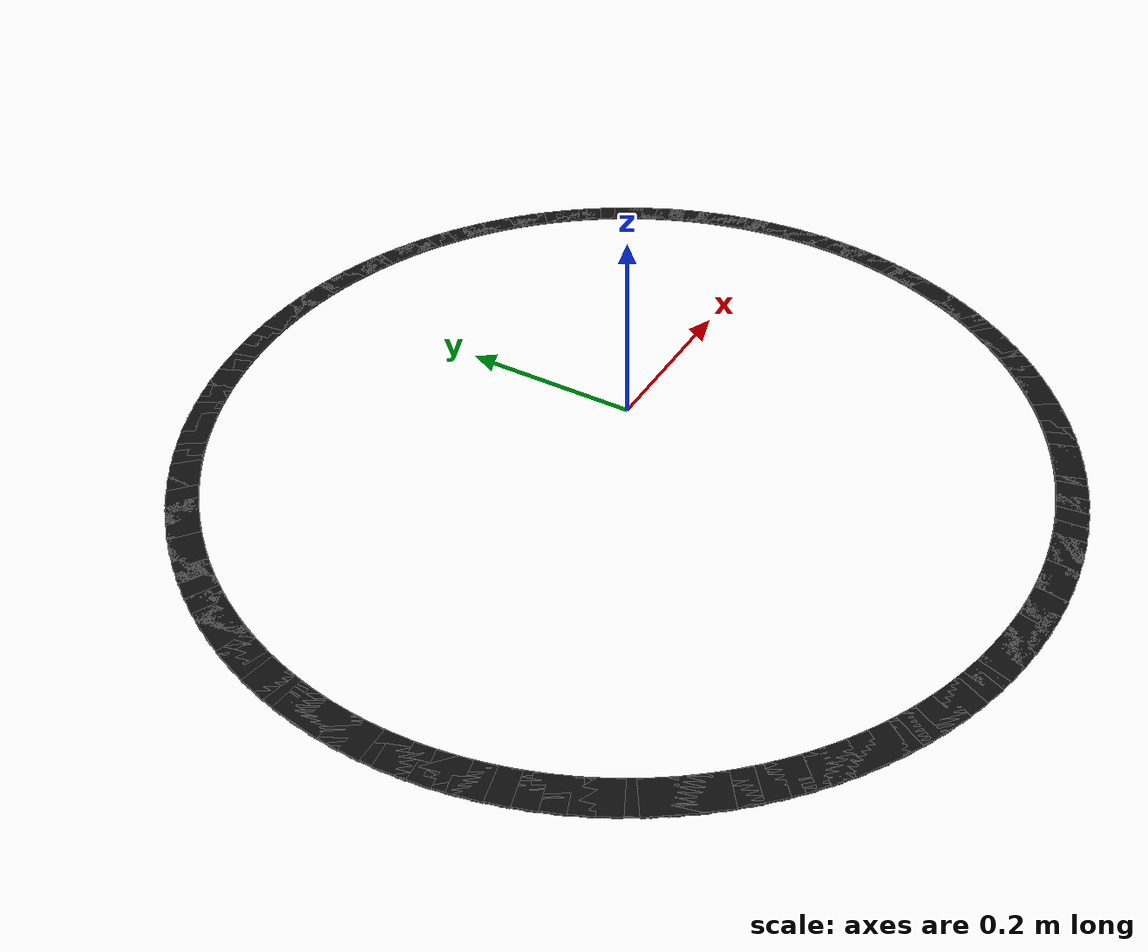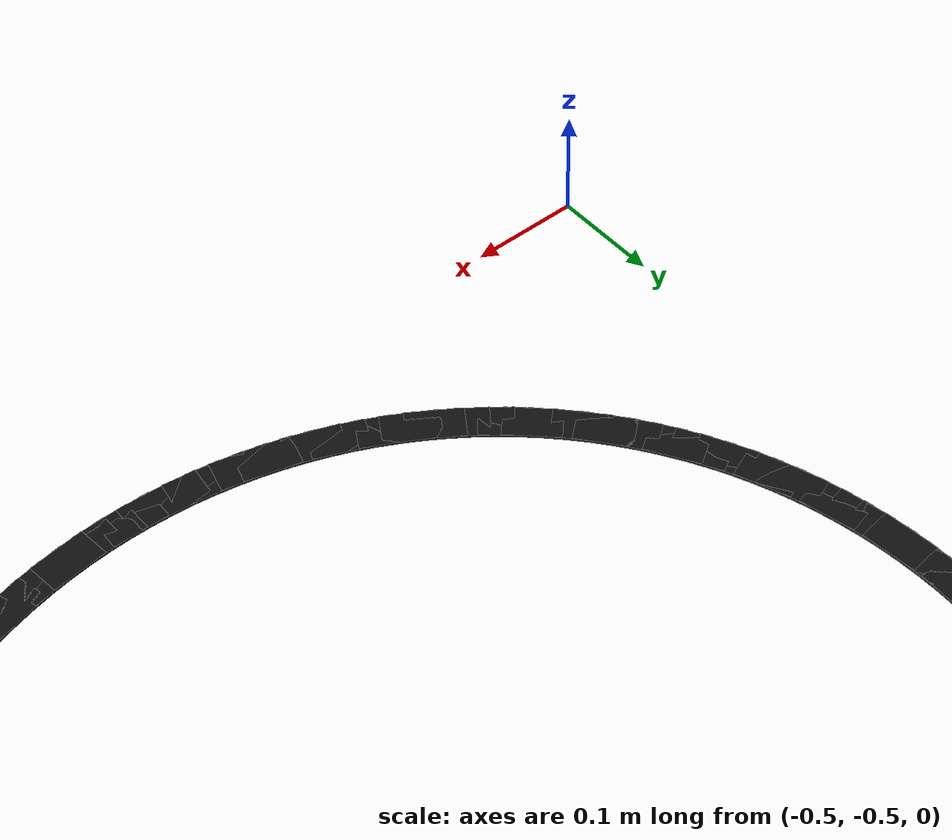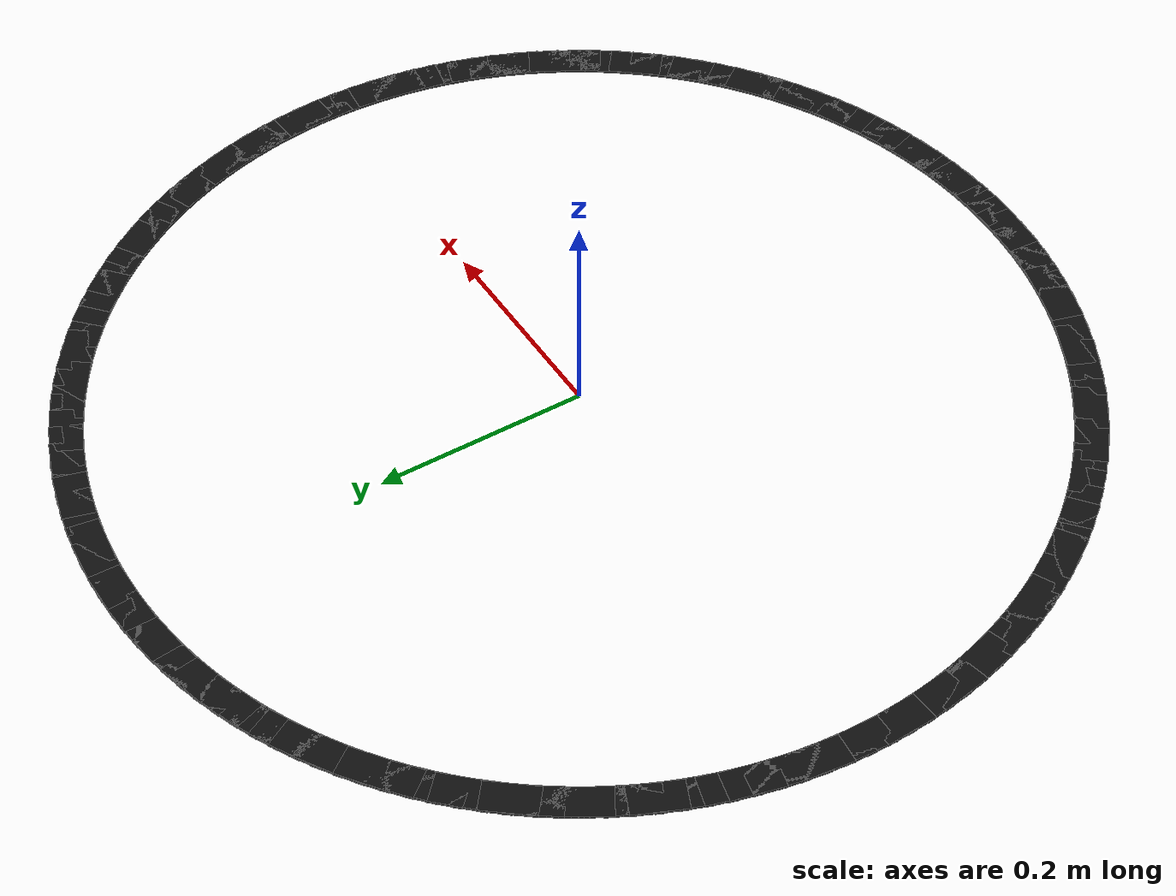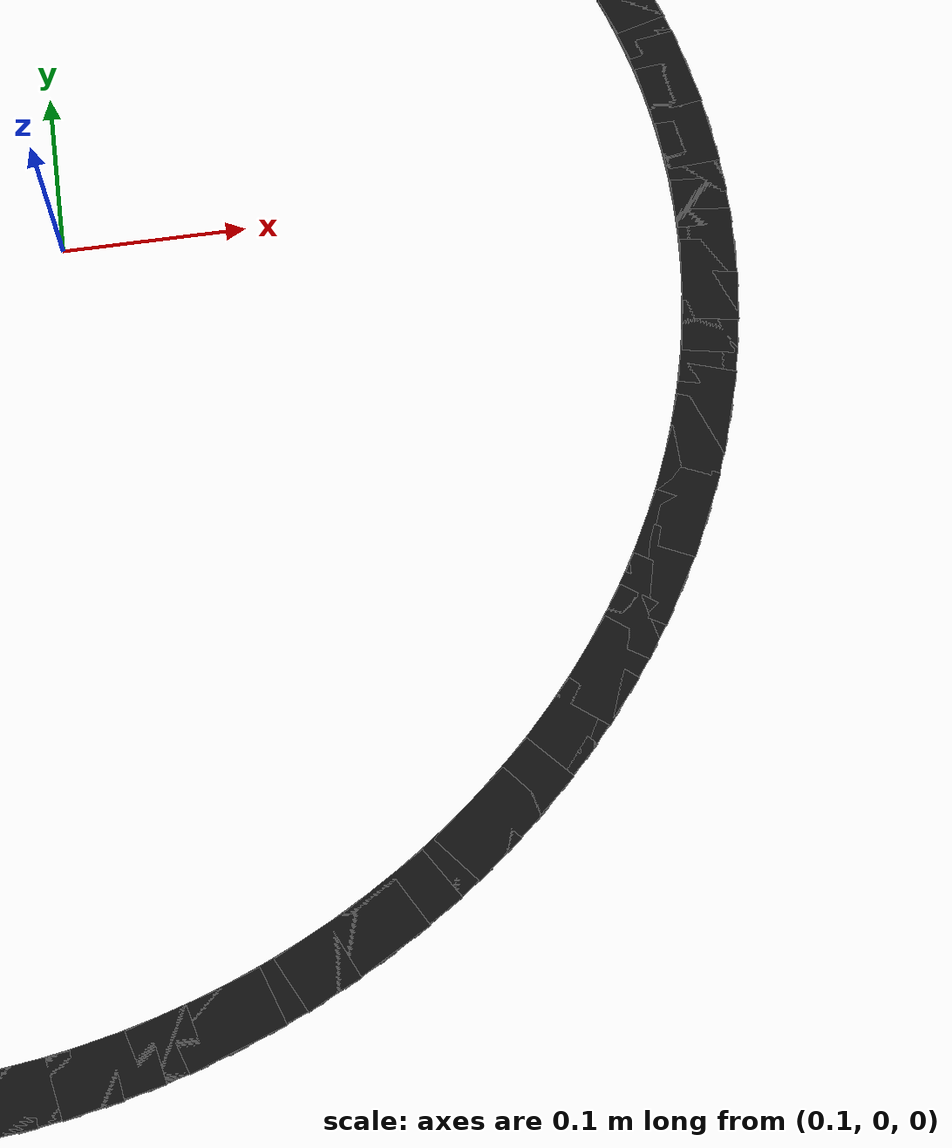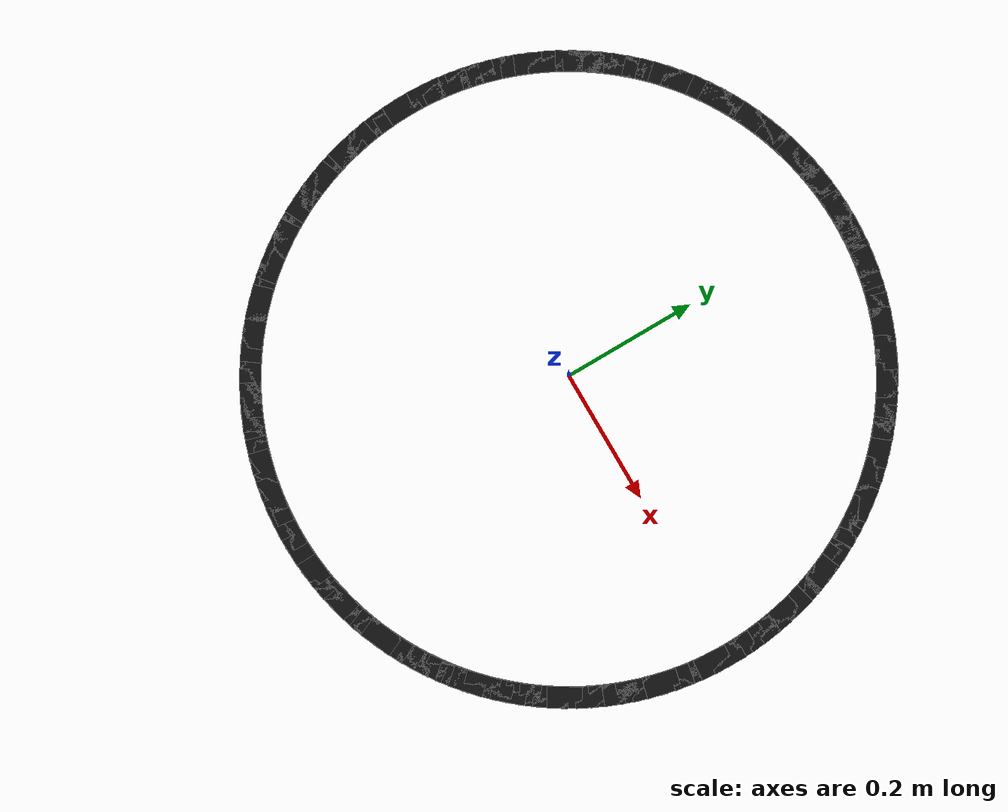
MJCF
<mujoco model="track_circle">
  <worldbody>
    <geom name="line_0" type="box" size="0.0248 0.015 0.001" pos="0.4498 0.0098 0.001" quat="0.699352 0 0 0.714778" contype="0" conaffinity="0" group="2" rgba="0.05 0.05 0.05 1"/>
    <geom name="line_1" type="box" size="0.0248 0.015 0.001" pos="0.4489 0.0294 0.001" quat="0.683592 0 0 0.729864" contype="0" conaffinity="0" group="2" rgba="0.05 0.05 0.05 1"/>
    <geom name="line_2" type="box" size="0.0248 0.015 0.001" pos="0.4472 0.0490 0.001" quat="0.667508 0 0 0.744603" contype="0" conaffinity="0" group="2" rgba="0.05 0.05 0.05 1"/>
    <geom name="line_3" type="box" size="0.0248 0.015 0.001" pos="0.4447 0.0684 0.001" quat="0.651105 0 0 0.758987" contype="0" conaffinity="0" group="2" rgba="0.05 0.05 0.05 1"/>
    <geom name="line_4" type="box" size="0.0248 0.015 0.001" pos="0.4412 0.0878 0.001" quat="0.634393 0 0 0.773010" contype="0" conaffinity="0" group="2" rgba="0.05 0.05 0.05 1"/>
    <geom name="line_5" type="box" size="0.0248 0.015 0.001" pos="0.4370 0.1069 0.001" quat="0.617379 0 0 0.786666" contype="0" conaffinity="0" group="2" rgba="0.05 0.05 0.05 1"/>
    <geom name="line_6" type="box" size="0.0248 0.015 0.001" pos="0.4319 0.1259 0.001" quat="0.600071 0 0 0.799947" contype="0" conaffinity="0" group="2" rgba="0.05 0.05 0.05 1"/>
    <geom name="line_7" type="box" size="0.0248 0.015 0.001" pos="0.4260 0.1446 0.001" quat="0.582478 0 0 0.812847" contype="0" conaffinity="0" group="2" rgba="0.05 0.05 0.05 1"/>
    <geom name="line_8" type="box" size="0.0248 0.015 0.001" pos="0.4193 0.1631 0.001" quat="0.564607 0 0 0.825360" contype="0" conaffinity="0" group="2" rgba="0.05 0.05 0.05 1"/>
    <geom name="line_9" type="box" size="0.0248 0.015 0.001" pos="0.4118 0.1812 0.001" quat="0.546467 0 0 0.837480" contype="0" conaffinity="0" group="2" rgba="0.05 0.05 0.05 1"/>
    <geom name="line_10" type="box" size="0.0248 0.015 0.001" pos="0.4035 0.1990 0.001" quat="0.528068 0 0 0.849202" contype="0" conaffinity="0" group="2" rgba="0.05 0.05 0.05 1"/>
    <geom name="line_11" type="box" size="0.0248 0.015 0.001" pos="0.3944 0.2164 0.001" quat="0.509417 0 0 0.860520" contype="0" conaffinity="0" group="2" rgba="0.05 0.05 0.05 1"/>
    <geom name="line_12" type="box" size="0.0248 0.015 0.001" pos="0.3846 0.2334 0.001" quat="0.490524 0 0 0.871428" contype="0" conaffinity="0" group="2" rgba="0.05 0.05 0.05 1"/>
    <geom name="line_13" type="box" size="0.0248 0.015 0.001" pos="0.3741 0.2499 0.001" quat="0.471397 0 0 0.881921" contype="0" conaffinity="0" group="2" rgba="0.05 0.05 0.05 1"/>
    <geom name="line_14" type="box" size="0.0248 0.015 0.001" pos="0.3628 0.2660 0.001" quat="0.452046 0 0 0.891995" contype="0" conaffinity="0" group="2" rgba="0.05 0.05 0.05 1"/>
    <geom name="line_15" type="box" size="0.0248 0.015 0.001" pos="0.3509 0.2816 0.001" quat="0.432479 0 0 0.901644" contype="0" conaffinity="0" group="2" rgba="0.05 0.05 0.05 1"/>
    <geom name="line_16" type="box" size="0.0248 0.015 0.001" pos="0.3382 0.2966 0.001" quat="0.412707 0 0 0.910864" contype="0" conaffinity="0" group="2" rgba="0.05 0.05 0.05 1"/>
    <geom name="line_17" type="box" size="0.0248 0.015 0.001" pos="0.3250 0.3111 0.001" quat="0.392738 0 0 0.919650" contype="0" conaffinity="0" group="2" rgba="0.05 0.05 0.05 1"/>
    <geom name="line_18" type="box" size="0.0248 0.015 0.001" pos="0.3111 0.3250 0.001" quat="0.372583 0 0 0.927999" contype="0" conaffinity="0" group="2" rgba="0.05 0.05 0.05 1"/>
    <geom name="line_19" type="box" size="0.0248 0.015 0.001" pos="0.2966 0.3382 0.001" quat="0.352250 0 0 0.935906" contype="0" conaffinity="0" group="2" rgba="0.05 0.05 0.05 1"/>
    <geom name="line_20" type="box" size="0.0248 0.015 0.001" pos="0.2816 0.3509 0.001" quat="0.331750 0 0 0.943368" contype="0" conaffinity="0" group="2" rgba="0.05 0.05 0.05 1"/>
    <geom name="line_21" type="box" size="0.0248 0.015 0.001" pos="0.2660 0.3628 0.001" quat="0.311091 0 0 0.950380" contype="0" conaffinity="0" group="2" rgba="0.05 0.05 0.05 1"/>
    <geom name="line_22" type="box" size="0.0248 0.015 0.001" pos="0.2499 0.3741 0.001" quat="0.290285 0 0 0.956940" contype="0" conaffinity="0" group="2" rgba="0.05 0.05 0.05 1"/>
    <geom name="line_23" type="box" size="0.0248 0.015 0.001" pos="0.2334 0.3846 0.001" quat="0.269340 0 0 0.963045" contype="0" conaffinity="0" group="2" rgba="0.05 0.05 0.05 1"/>
    <geom name="line_24" type="box" size="0.0248 0.015 0.001" pos="0.2164 0.3944 0.001" quat="0.248267 0 0 0.968692" contype="0" conaffinity="0" group="2" rgba="0.05 0.05 0.05 1"/>
    <geom name="line_25" type="box" size="0.0248 0.015 0.001" pos="0.1990 0.4035 0.001" quat="0.227076 0 0 0.973877" contype="0" conaffinity="0" group="2" rgba="0.05 0.05 0.05 1"/>
    <geom name="line_26" type="box" size="0.0248 0.015 0.001" pos="0.1812 0.4118 0.001" quat="0.205777 0 0 0.978599" contype="0" conaffinity="0" group="2" rgba="0.05 0.05 0.05 1"/>
    <geom name="line_27" type="box" size="0.0248 0.015 0.001" pos="0.1631 0.4193 0.001" quat="0.184380 0 0 0.982855" contype="0" conaffinity="0" group="2" rgba="0.05 0.05 0.05 1"/>
    <geom name="line_28" type="box" size="0.0248 0.015 0.001" pos="0.1446 0.4260 0.001" quat="0.162895 0 0 0.986643" contype="0" conaffinity="0" group="2" rgba="0.05 0.05 0.05 1"/>
    <geom name="line_29" type="box" size="0.0248 0.015 0.001" pos="0.1259 0.4319 0.001" quat="0.141333 0 0 0.989962" contype="0" conaffinity="0" group="2" rgba="0.05 0.05 0.05 1"/>
    <geom name="line_30" type="box" size="0.0248 0.015 0.001" pos="0.1069 0.4370 0.001" quat="0.119704 0 0 0.992810" contype="0" conaffinity="0" group="2" rgba="0.05 0.05 0.05 1"/>
    <geom name="line_31" type="box" size="0.0248 0.015 0.001" pos="0.0878 0.4412 0.001" quat="0.098017 0 0 0.995185" contype="0" conaffinity="0" group="2" rgba="0.05 0.05 0.05 1"/>
    <geom name="line_32" type="box" size="0.0248 0.015 0.001" pos="0.0684 0.4447 0.001" quat="0.076284 0 0 0.997086" contype="0" conaffinity="0" group="2" rgba="0.05 0.05 0.05 1"/>
    <geom name="line_33" type="box" size="0.0248 0.015 0.001" pos="0.0490 0.4472 0.001" quat="0.054515 0 0 0.998513" contype="0" conaffinity="0" group="2" rgba="0.05 0.05 0.05 1"/>
    <geom name="line_34" type="box" size="0.0248 0.015 0.001" pos="0.0294 0.4489 0.001" quat="0.032719 0 0 0.999465" contype="0" conaffinity="0" group="2" rgba="0.05 0.05 0.05 1"/>
    <geom name="line_35" type="box" size="0.0248 0.015 0.001" pos="0.0098 0.4498 0.001" quat="0.010908 0 0 0.999941" contype="0" conaffinity="0" group="2" rgba="0.05 0.05 0.05 1"/>
    <geom name="line_36" type="box" size="0.0248 0.015 0.001" pos="-0.0098 0.4498 0.001" quat="0.010908 0 0 -0.999941" contype="0" conaffinity="0" group="2" rgba="0.05 0.05 0.05 1"/>
    <geom name="line_37" type="box" size="0.0248 0.015 0.001" pos="-0.0294 0.4489 0.001" quat="0.032719 0 0 -0.999465" contype="0" conaffinity="0" group="2" rgba="0.05 0.05 0.05 1"/>
    <geom name="line_38" type="box" size="0.0248 0.015 0.001" pos="-0.0490 0.4472 0.001" quat="0.054515 0 0 -0.998513" contype="0" conaffinity="0" group="2" rgba="0.05 0.05 0.05 1"/>
    <geom name="line_39" type="box" size="0.0248 0.015 0.001" pos="-0.0684 0.4447 0.001" quat="0.076284 0 0 -0.997086" contype="0" conaffinity="0" group="2" rgba="0.05 0.05 0.05 1"/>
    <geom name="line_40" type="box" size="0.0248 0.015 0.001" pos="-0.0878 0.4412 0.001" quat="0.098017 0 0 -0.995185" contype="0" conaffinity="0" group="2" rgba="0.05 0.05 0.05 1"/>
    <geom name="line_41" type="box" size="0.0248 0.015 0.001" pos="-0.1069 0.4370 0.001" quat="0.119704 0 0 -0.992810" contype="0" conaffinity="0" group="2" rgba="0.05 0.05 0.05 1"/>
    <geom name="line_42" type="box" size="0.0248 0.015 0.001" pos="-0.1259 0.4319 0.001" quat="0.141333 0 0 -0.989962" contype="0" conaffinity="0" group="2" rgba="0.05 0.05 0.05 1"/>
    <geom name="line_43" type="box" size="0.0248 0.015 0.001" pos="-0.1446 0.4260 0.001" quat="0.162895 0 0 -0.986643" contype="0" conaffinity="0" group="2" rgba="0.05 0.05 0.05 1"/>
    <geom name="line_44" type="box" size="0.0248 0.015 0.001" pos="-0.1631 0.4193 0.001" quat="0.184380 0 0 -0.982855" contype="0" conaffinity="0" group="2" rgba="0.05 0.05 0.05 1"/>
    <geom name="line_45" type="box" size="0.0248 0.015 0.001" pos="-0.1812 0.4118 0.001" quat="0.205777 0 0 -0.978599" contype="0" conaffinity="0" group="2" rgba="0.05 0.05 0.05 1"/>
    <geom name="line_46" type="box" size="0.0248 0.015 0.001" pos="-0.1990 0.4035 0.001" quat="0.227076 0 0 -0.973877" contype="0" conaffinity="0" group="2" rgba="0.05 0.05 0.05 1"/>
    <geom name="line_47" type="box" size="0.0248 0.015 0.001" pos="-0.2164 0.3944 0.001" quat="0.248267 0 0 -0.968692" contype="0" conaffinity="0" group="2" rgba="0.05 0.05 0.05 1"/>
    <geom name="line_48" type="box" size="0.0248 0.015 0.001" pos="-0.2334 0.3846 0.001" quat="0.269340 0 0 -0.963045" contype="0" conaffinity="0" group="2" rgba="0.05 0.05 0.05 1"/>
    <geom name="line_49" type="box" size="0.0248 0.015 0.001" pos="-0.2499 0.3741 0.001" quat="0.290285 0 0 -0.956940" contype="0" conaffinity="0" group="2" rgba="0.05 0.05 0.05 1"/>
    <geom name="line_50" type="box" size="0.0248 0.015 0.001" pos="-0.2660 0.3628 0.001" quat="0.311091 0 0 -0.950380" contype="0" conaffinity="0" group="2" rgba="0.05 0.05 0.05 1"/>
    <geom name="line_51" type="box" size="0.0248 0.015 0.001" pos="-0.2816 0.3509 0.001" quat="0.331750 0 0 -0.943368" contype="0" conaffinity="0" group="2" rgba="0.05 0.05 0.05 1"/>
    <geom name="line_52" type="box" size="0.0248 0.015 0.001" pos="-0.2966 0.3382 0.001" quat="0.352250 0 0 -0.935906" contype="0" conaffinity="0" group="2" rgba="0.05 0.05 0.05 1"/>
    <geom name="line_53" type="box" size="0.0248 0.015 0.001" pos="-0.3111 0.3250 0.001" quat="0.372583 0 0 -0.927999" contype="0" conaffinity="0" group="2" rgba="0.05 0.05 0.05 1"/>
    <geom name="line_54" type="box" size="0.0248 0.015 0.001" pos="-0.3250 0.3111 0.001" quat="0.392738 0 0 -0.919650" contype="0" conaffinity="0" group="2" rgba="0.05 0.05 0.05 1"/>
    <geom name="line_55" type="box" size="0.0248 0.015 0.001" pos="-0.3382 0.2966 0.001" quat="0.412707 0 0 -0.910864" contype="0" conaffinity="0" group="2" rgba="0.05 0.05 0.05 1"/>
    <geom name="line_56" type="box" size="0.0248 0.015 0.001" pos="-0.3509 0.2816 0.001" quat="0.432479 0 0 -0.901644" contype="0" conaffinity="0" group="2" rgba="0.05 0.05 0.05 1"/>
    <geom name="line_57" type="box" size="0.0248 0.015 0.001" pos="-0.3628 0.2660 0.001" quat="0.452046 0 0 -0.891995" contype="0" conaffinity="0" group="2" rgba="0.05 0.05 0.05 1"/>
    <geom name="line_58" type="box" size="0.0248 0.015 0.001" pos="-0.3741 0.2499 0.001" quat="0.471397 0 0 -0.881921" contype="0" conaffinity="0" group="2" rgba="0.05 0.05 0.05 1"/>
    <geom name="line_59" type="box" size="0.0248 0.015 0.001" pos="-0.3846 0.2334 0.001" quat="0.490524 0 0 -0.871428" contype="0" conaffinity="0" group="2" rgba="0.05 0.05 0.05 1"/>
    <geom name="line_60" type="box" size="0.0248 0.015 0.001" pos="-0.3944 0.2164 0.001" quat="0.509417 0 0 -0.860520" contype="0" conaffinity="0" group="2" rgba="0.05 0.05 0.05 1"/>
    <geom name="line_61" type="box" size="0.0248 0.015 0.001" pos="-0.4035 0.1990 0.001" quat="0.528068 0 0 -0.849202" contype="0" conaffinity="0" group="2" rgba="0.05 0.05 0.05 1"/>
    <geom name="line_62" type="box" size="0.0248 0.015 0.001" pos="-0.4118 0.1812 0.001" quat="0.546467 0 0 -0.837480" contype="0" conaffinity="0" group="2" rgba="0.05 0.05 0.05 1"/>
    <geom name="line_63" type="box" size="0.0248 0.015 0.001" pos="-0.4193 0.1631 0.001" quat="0.564607 0 0 -0.825360" contype="0" conaffinity="0" group="2" rgba="0.05 0.05 0.05 1"/>
    <geom name="line_64" type="box" size="0.0248 0.015 0.001" pos="-0.4260 0.1446 0.001" quat="0.582478 0 0 -0.812847" contype="0" conaffinity="0" group="2" rgba="0.05 0.05 0.05 1"/>
    <geom name="line_65" type="box" size="0.0248 0.015 0.001" pos="-0.4319 0.1259 0.001" quat="0.600071 0 0 -0.799947" contype="0" conaffinity="0" group="2" rgba="0.05 0.05 0.05 1"/>
    <geom name="line_66" type="box" size="0.0248 0.015 0.001" pos="-0.4370 0.1069 0.001" quat="0.617379 0 0 -0.786666" contype="0" conaffinity="0" group="2" rgba="0.05 0.05 0.05 1"/>
    <geom name="line_67" type="box" size="0.0248 0.015 0.001" pos="-0.4412 0.0878 0.001" quat="0.634393 0 0 -0.773010" contype="0" conaffinity="0" group="2" rgba="0.05 0.05 0.05 1"/>
    <geom name="line_68" type="box" size="0.0248 0.015 0.001" pos="-0.4447 0.0684 0.001" quat="0.651105 0 0 -0.758987" contype="0" conaffinity="0" group="2" rgba="0.05 0.05 0.05 1"/>
    <geom name="line_69" type="box" size="0.0248 0.015 0.001" pos="-0.4472 0.0490 0.001" quat="0.667508 0 0 -0.744603" contype="0" conaffinity="0" group="2" rgba="0.05 0.05 0.05 1"/>
    <geom name="line_70" type="box" size="0.0248 0.015 0.001" pos="-0.4489 0.0294 0.001" quat="0.683592 0 0 -0.729864" contype="0" conaffinity="0" group="2" rgba="0.05 0.05 0.05 1"/>
    <geom name="line_71" type="box" size="0.0248 0.015 0.001" pos="-0.4498 0.0098 0.001" quat="0.699352 0 0 -0.714778" contype="0" conaffinity="0" group="2" rgba="0.05 0.05 0.05 1"/>
    <geom name="line_72" type="box" size="0.0248 0.015 0.001" pos="-0.4498 -0.0098 0.001" quat="0.714778 0 0 -0.699352" contype="0" conaffinity="0" group="2" rgba="0.05 0.05 0.05 1"/>
    <geom name="line_73" type="box" size="0.0248 0.015 0.001" pos="-0.4489 -0.0294 0.001" quat="0.729864 0 0 -0.683592" contype="0" conaffinity="0" group="2" rgba="0.05 0.05 0.05 1"/>
    <geom name="line_74" type="box" size="0.0248 0.015 0.001" pos="-0.4472 -0.0490 0.001" quat="0.744603 0 0 -0.667508" contype="0" conaffinity="0" group="2" rgba="0.05 0.05 0.05 1"/>
    <geom name="line_75" type="box" size="0.0248 0.015 0.001" pos="-0.4447 -0.0684 0.001" quat="0.758987 0 0 -0.651105" contype="0" conaffinity="0" group="2" rgba="0.05 0.05 0.05 1"/>
    <geom name="line_76" type="box" size="0.0248 0.015 0.001" pos="-0.4412 -0.0878 0.001" quat="0.773010 0 0 -0.634393" contype="0" conaffinity="0" group="2" rgba="0.05 0.05 0.05 1"/>
    <geom name="line_77" type="box" size="0.0248 0.015 0.001" pos="-0.4370 -0.1069 0.001" quat="0.786666 0 0 -0.617379" contype="0" conaffinity="0" group="2" rgba="0.05 0.05 0.05 1"/>
    <geom name="line_78" type="box" size="0.0248 0.015 0.001" pos="-0.4319 -0.1259 0.001" quat="0.799947 0 0 -0.600071" contype="0" conaffinity="0" group="2" rgba="0.05 0.05 0.05 1"/>
    <geom name="line_79" type="box" size="0.0248 0.015 0.001" pos="-0.4260 -0.1446 0.001" quat="0.812847 0 0 -0.582478" contype="0" conaffinity="0" group="2" rgba="0.05 0.05 0.05 1"/>
    <geom name="line_80" type="box" size="0.0248 0.015 0.001" pos="-0.4193 -0.1631 0.001" quat="0.825360 0 0 -0.564607" contype="0" conaffinity="0" group="2" rgba="0.05 0.05 0.05 1"/>
    <geom name="line_81" type="box" size="0.0248 0.015 0.001" pos="-0.4118 -0.1812 0.001" quat="0.837480 0 0 -0.546467" contype="0" conaffinity="0" group="2" rgba="0.05 0.05 0.05 1"/>
    <geom name="line_82" type="box" size="0.0248 0.015 0.001" pos="-0.4035 -0.1990 0.001" quat="0.849202 0 0 -0.528068" contype="0" conaffinity="0" group="2" rgba="0.05 0.05 0.05 1"/>
    <geom name="line_83" type="box" size="0.0248 0.015 0.001" pos="-0.3944 -0.2164 0.001" quat="0.860520 0 0 -0.509417" contype="0" conaffinity="0" group="2" rgba="0.05 0.05 0.05 1"/>
    <geom name="line_84" type="box" size="0.0248 0.015 0.001" pos="-0.3846 -0.2334 0.001" quat="0.871428 0 0 -0.490524" contype="0" conaffinity="0" group="2" rgba="0.05 0.05 0.05 1"/>
    <geom name="line_85" type="box" size="0.0248 0.015 0.001" pos="-0.3741 -0.2499 0.001" quat="0.881921 0 0 -0.471397" contype="0" conaffinity="0" group="2" rgba="0.05 0.05 0.05 1"/>
    <geom name="line_86" type="box" size="0.0248 0.015 0.001" pos="-0.3628 -0.2660 0.001" quat="0.891995 0 0 -0.452046" contype="0" conaffinity="0" group="2" rgba="0.05 0.05 0.05 1"/>
    <geom name="line_87" type="box" size="0.0248 0.015 0.001" pos="-0.3509 -0.2816 0.001" quat="0.901644 0 0 -0.432479" contype="0" conaffinity="0" group="2" rgba="0.05 0.05 0.05 1"/>
    <geom name="line_88" type="box" size="0.0248 0.015 0.001" pos="-0.3382 -0.2966 0.001" quat="0.910864 0 0 -0.412707" contype="0" conaffinity="0" group="2" rgba="0.05 0.05 0.05 1"/>
    <geom name="line_89" type="box" size="0.0248 0.015 0.001" pos="-0.3250 -0.3111 0.001" quat="0.919650 0 0 -0.392738" contype="0" conaffinity="0" group="2" rgba="0.05 0.05 0.05 1"/>
    <geom name="line_90" type="box" size="0.0248 0.015 0.001" pos="-0.3111 -0.3250 0.001" quat="0.927999 0 0 -0.372583" contype="0" conaffinity="0" group="2" rgba="0.05 0.05 0.05 1"/>
    <geom name="line_91" type="box" size="0.0248 0.015 0.001" pos="-0.2966 -0.3382 0.001" quat="0.935906 0 0 -0.352250" contype="0" conaffinity="0" group="2" rgba="0.05 0.05 0.05 1"/>
    <geom name="line_92" type="box" size="0.0248 0.015 0.001" pos="-0.2816 -0.3509 0.001" quat="0.943368 0 0 -0.331750" contype="0" conaffinity="0" group="2" rgba="0.05 0.05 0.05 1"/>
    <geom name="line_93" type="box" size="0.0248 0.015 0.001" pos="-0.2660 -0.3628 0.001" quat="0.950380 0 0 -0.311091" contype="0" conaffinity="0" group="2" rgba="0.05 0.05 0.05 1"/>
    <geom name="line_94" type="box" size="0.0248 0.015 0.001" pos="-0.2499 -0.3741 0.001" quat="0.956940 0 0 -0.290285" contype="0" conaffinity="0" group="2" rgba="0.05 0.05 0.05 1"/>
    <geom name="line_95" type="box" size="0.0248 0.015 0.001" pos="-0.2334 -0.3846 0.001" quat="0.963045 0 0 -0.269340" contype="0" conaffinity="0" group="2" rgba="0.05 0.05 0.05 1"/>
    <geom name="line_96" type="box" size="0.0248 0.015 0.001" pos="-0.2164 -0.3944 0.001" quat="0.968692 0 0 -0.248267" contype="0" conaffinity="0" group="2" rgba="0.05 0.05 0.05 1"/>
    <geom name="line_97" type="box" size="0.0248 0.015 0.001" pos="-0.1990 -0.4035 0.001" quat="0.973877 0 0 -0.227076" contype="0" conaffinity="0" group="2" rgba="0.05 0.05 0.05 1"/>
    <geom name="line_98" type="box" size="0.0248 0.015 0.001" pos="-0.1812 -0.4118 0.001" quat="0.978599 0 0 -0.205777" contype="0" conaffinity="0" group="2" rgba="0.05 0.05 0.05 1"/>
    <geom name="line_99" type="box" size="0.0248 0.015 0.001" pos="-0.1631 -0.4193 0.001" quat="0.982855 0 0 -0.184380" contype="0" conaffinity="0" group="2" rgba="0.05 0.05 0.05 1"/>
    <geom name="line_100" type="box" size="0.0248 0.015 0.001" pos="-0.1446 -0.4260 0.001" quat="0.986643 0 0 -0.162895" contype="0" conaffinity="0" group="2" rgba="0.05 0.05 0.05 1"/>
    <geom name="line_101" type="box" size="0.0248 0.015 0.001" pos="-0.1259 -0.4319 0.001" quat="0.989962 0 0 -0.141333" contype="0" conaffinity="0" group="2" rgba="0.05 0.05 0.05 1"/>
    <geom name="line_102" type="box" size="0.0248 0.015 0.001" pos="-0.1069 -0.4370 0.001" quat="0.992810 0 0 -0.119704" contype="0" conaffinity="0" group="2" rgba="0.05 0.05 0.05 1"/>
    <geom name="line_103" type="box" size="0.0248 0.015 0.001" pos="-0.0878 -0.4412 0.001" quat="0.995185 0 0 -0.098017" contype="0" conaffinity="0" group="2" rgba="0.05 0.05 0.05 1"/>
    <geom name="line_104" type="box" size="0.0248 0.015 0.001" pos="-0.0684 -0.4447 0.001" quat="0.997086 0 0 -0.076284" contype="0" conaffinity="0" group="2" rgba="0.05 0.05 0.05 1"/>
    <geom name="line_105" type="box" size="0.0248 0.015 0.001" pos="-0.0490 -0.4472 0.001" quat="0.998513 0 0 -0.054515" contype="0" conaffinity="0" group="2" rgba="0.05 0.05 0.05 1"/>
    <geom name="line_106" type="box" size="0.0248 0.015 0.001" pos="-0.0294 -0.4489 0.001" quat="0.999465 0 0 -0.032719" contype="0" conaffinity="0" group="2" rgba="0.05 0.05 0.05 1"/>
    <geom name="line_107" type="box" size="0.0248 0.015 0.001" pos="-0.0098 -0.4498 0.001" quat="0.999941 0 0 -0.010908" contype="0" conaffinity="0" group="2" rgba="0.05 0.05 0.05 1"/>
    <geom name="line_108" type="box" size="0.0248 0.015 0.001" pos="0.0098 -0.4498 0.001" quat="0.999941 0 0 0.010908" contype="0" conaffinity="0" group="2" rgba="0.05 0.05 0.05 1"/>
    <geom name="line_109" type="box" size="0.0248 0.015 0.001" pos="0.0294 -0.4489 0.001" quat="0.999465 0 0 0.032719" contype="0" conaffinity="0" group="2" rgba="0.05 0.05 0.05 1"/>
    <geom name="line_110" type="box" size="0.0248 0.015 0.001" pos="0.0490 -0.4472 0.001" quat="0.998513 0 0 0.054515" contype="0" conaffinity="0" group="2" rgba="0.05 0.05 0.05 1"/>
    <geom name="line_111" type="box" size="0.0248 0.015 0.001" pos="0.0684 -0.4447 0.001" quat="0.997086 0 0 0.076284" contype="0" conaffinity="0" group="2" rgba="0.05 0.05 0.05 1"/>
    <geom name="line_112" type="box" size="0.0248 0.015 0.001" pos="0.0878 -0.4412 0.001" quat="0.995185 0 0 0.098017" contype="0" conaffinity="0" group="2" rgba="0.05 0.05 0.05 1"/>
    <geom name="line_113" type="box" size="0.0248 0.015 0.001" pos="0.1069 -0.4370 0.001" quat="0.992810 0 0 0.119704" contype="0" conaffinity="0" group="2" rgba="0.05 0.05 0.05 1"/>
    <geom name="line_114" type="box" size="0.0248 0.015 0.001" pos="0.1259 -0.4319 0.001" quat="0.989962 0 0 0.141333" contype="0" conaffinity="0" group="2" rgba="0.05 0.05 0.05 1"/>
    <geom name="line_115" type="box" size="0.0248 0.015 0.001" pos="0.1446 -0.4260 0.001" quat="0.986643 0 0 0.162895" contype="0" conaffinity="0" group="2" rgba="0.05 0.05 0.05 1"/>
    <geom name="line_116" type="box" size="0.0248 0.015 0.001" pos="0.1631 -0.4193 0.001" quat="0.982855 0 0 0.184380" contype="0" conaffinity="0" group="2" rgba="0.05 0.05 0.05 1"/>
    <geom name="line_117" type="box" size="0.0248 0.015 0.001" pos="0.1812 -0.4118 0.001" quat="0.978599 0 0 0.205777" contype="0" conaffinity="0" group="2" rgba="0.05 0.05 0.05 1"/>
    <geom name="line_118" type="box" size="0.0248 0.015 0.001" pos="0.1990 -0.4035 0.001" quat="0.973877 0 0 0.227076" contype="0" conaffinity="0" group="2" rgba="0.05 0.05 0.05 1"/>
    <geom name="line_119" type="box" size="0.0248 0.015 0.001" pos="0.2164 -0.3944 0.001" quat="0.968692 0 0 0.248267" contype="0" conaffinity="0" group="2" rgba="0.05 0.05 0.05 1"/>
    <geom name="line_120" type="box" size="0.0248 0.015 0.001" pos="0.2334 -0.3846 0.001" quat="0.963045 0 0 0.269340" contype="0" conaffinity="0" group="2" rgba="0.05 0.05 0.05 1"/>
    <geom name="line_121" type="box" size="0.0248 0.015 0.001" pos="0.2499 -0.3741 0.001" quat="0.956940 0 0 0.290285" contype="0" conaffinity="0" group="2" rgba="0.05 0.05 0.05 1"/>
    <geom name="line_122" type="box" size="0.0248 0.015 0.001" pos="0.2660 -0.3628 0.001" quat="0.950380 0 0 0.311091" contype="0" conaffinity="0" group="2" rgba="0.05 0.05 0.05 1"/>
    <geom name="line_123" type="box" size="0.0248 0.015 0.001" pos="0.2816 -0.3509 0.001" quat="0.943368 0 0 0.331750" contype="0" conaffinity="0" group="2" rgba="0.05 0.05 0.05 1"/>
    <geom name="line_124" type="box" size="0.0248 0.015 0.001" pos="0.2966 -0.3382 0.001" quat="0.935906 0 0 0.352250" contype="0" conaffinity="0" group="2" rgba="0.05 0.05 0.05 1"/>
    <geom name="line_125" type="box" size="0.0248 0.015 0.001" pos="0.3111 -0.3250 0.001" quat="0.927999 0 0 0.372583" contype="0" conaffinity="0" group="2" rgba="0.05 0.05 0.05 1"/>
    <geom name="line_126" type="box" size="0.0248 0.015 0.001" pos="0.3250 -0.3111 0.001" quat="0.919650 0 0 0.392738" contype="0" conaffinity="0" group="2" rgba="0.05 0.05 0.05 1"/>
    <geom name="line_127" type="box" size="0.0248 0.015 0.001" pos="0.3382 -0.2966 0.001" quat="0.910864 0 0 0.412707" contype="0" conaffinity="0" group="2" rgba="0.05 0.05 0.05 1"/>
    <geom name="line_128" type="box" size="0.0248 0.015 0.001" pos="0.3509 -0.2816 0.001" quat="0.901644 0 0 0.432479" contype="0" conaffinity="0" group="2" rgba="0.05 0.05 0.05 1"/>
    <geom name="line_129" type="box" size="0.0248 0.015 0.001" pos="0.3628 -0.2660 0.001" quat="0.891995 0 0 0.452046" contype="0" conaffinity="0" group="2" rgba="0.05 0.05 0.05 1"/>
    <geom name="line_130" type="box" size="0.0248 0.015 0.001" pos="0.3741 -0.2499 0.001" quat="0.881921 0 0 0.471397" contype="0" conaffinity="0" group="2" rgba="0.05 0.05 0.05 1"/>
    <geom name="line_131" type="box" size="0.0248 0.015 0.001" pos="0.3846 -0.2334 0.001" quat="0.871428 0 0 0.490524" contype="0" conaffinity="0" group="2" rgba="0.05 0.05 0.05 1"/>
    <geom name="line_132" type="box" size="0.0248 0.015 0.001" pos="0.3944 -0.2164 0.001" quat="0.860520 0 0 0.509417" contype="0" conaffinity="0" group="2" rgba="0.05 0.05 0.05 1"/>
    <geom name="line_133" type="box" size="0.0248 0.015 0.001" pos="0.4035 -0.1990 0.001" quat="0.849202 0 0 0.528068" contype="0" conaffinity="0" group="2" rgba="0.05 0.05 0.05 1"/>
    <geom name="line_134" type="box" size="0.0248 0.015 0.001" pos="0.4118 -0.1812 0.001" quat="0.837480 0 0 0.546467" contype="0" conaffinity="0" group="2" rgba="0.05 0.05 0.05 1"/>
    <geom name="line_135" type="box" size="0.0248 0.015 0.001" pos="0.4193 -0.1631 0.001" quat="0.825360 0 0 0.564607" contype="0" conaffinity="0" group="2" rgba="0.05 0.05 0.05 1"/>
    <geom name="line_136" type="box" size="0.0248 0.015 0.001" pos="0.4260 -0.1446 0.001" quat="0.812847 0 0 0.582478" contype="0" conaffinity="0" group="2" rgba="0.05 0.05 0.05 1"/>
    <geom name="line_137" type="box" size="0.0248 0.015 0.001" pos="0.4319 -0.1259 0.001" quat="0.799947 0 0 0.600071" contype="0" conaffinity="0" group="2" rgba="0.05 0.05 0.05 1"/>
    <geom name="line_138" type="box" size="0.0248 0.015 0.001" pos="0.4370 -0.1069 0.001" quat="0.786666 0 0 0.617379" contype="0" conaffinity="0" group="2" rgba="0.05 0.05 0.05 1"/>
    <geom name="line_139" type="box" size="0.0248 0.015 0.001" pos="0.4412 -0.0878 0.001" quat="0.773010 0 0 0.634393" contype="0" conaffinity="0" group="2" rgba="0.05 0.05 0.05 1"/>
    <geom name="line_140" type="box" size="0.0248 0.015 0.001" pos="0.4447 -0.0684 0.001" quat="0.758987 0 0 0.651105" contype="0" conaffinity="0" group="2" rgba="0.05 0.05 0.05 1"/>
    <geom name="line_141" type="box" size="0.0248 0.015 0.001" pos="0.4472 -0.0490 0.001" quat="0.744603 0 0 0.667508" contype="0" conaffinity="0" group="2" rgba="0.05 0.05 0.05 1"/>
    <geom name="line_142" type="box" size="0.0248 0.015 0.001" pos="0.4489 -0.0294 0.001" quat="0.729864 0 0 0.683592" contype="0" conaffinity="0" group="2" rgba="0.05 0.05 0.05 1"/>
    <geom name="line_143" type="box" size="0.0248 0.015 0.001" pos="0.4498 -0.0098 0.001" quat="0.714778 0 0 0.699352" contype="0" conaffinity="0" group="2" rgba="0.05 0.05 0.05 1"/>
  </worldbody>
</mujoco>
